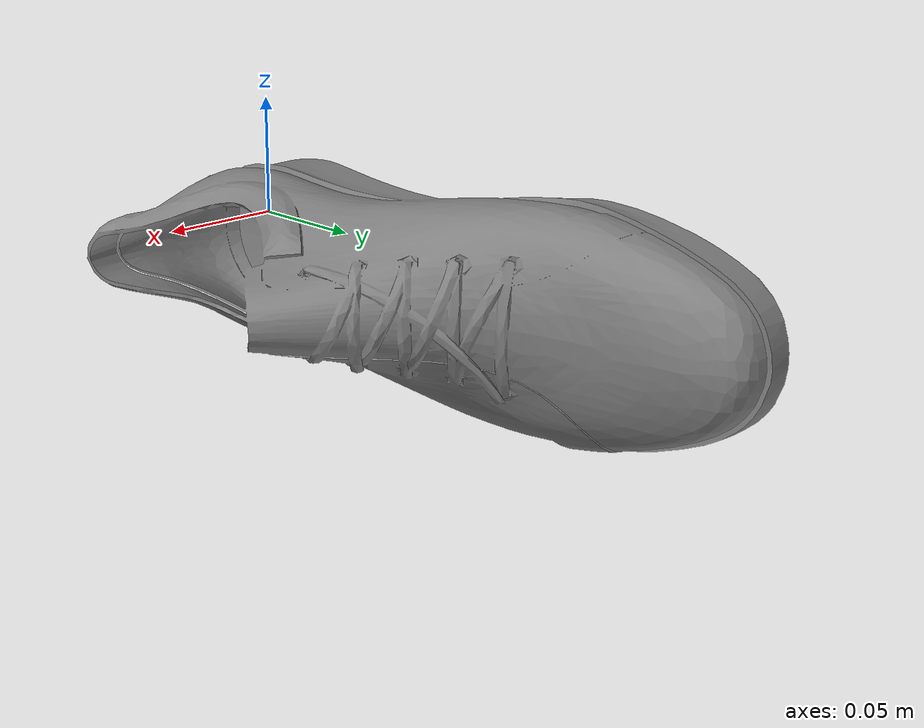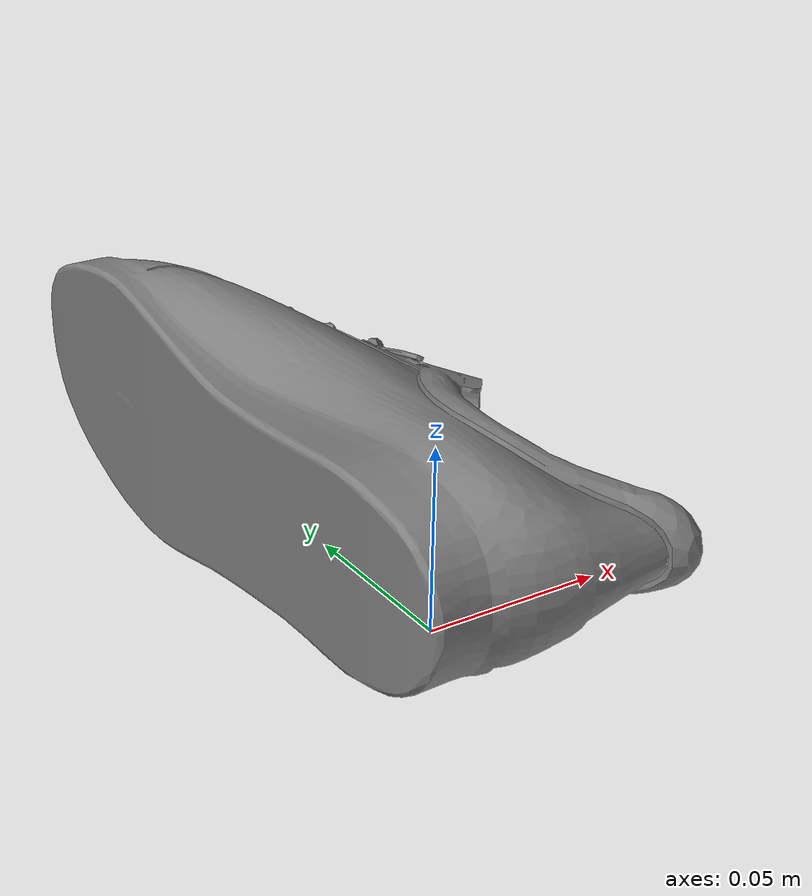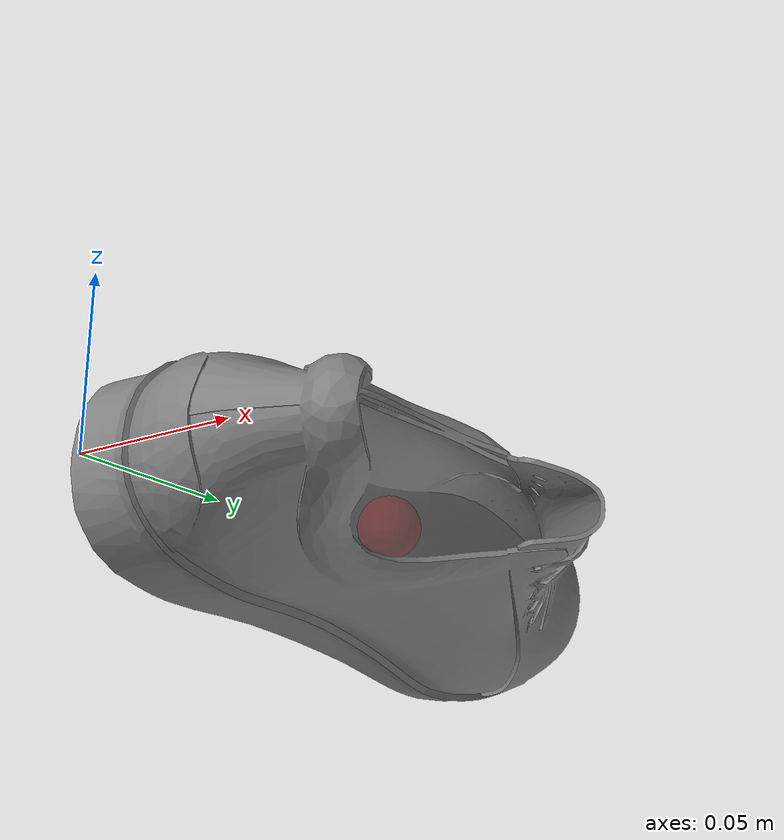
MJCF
<mujoco model="shoe">
    <compiler angle="radian" meshdir="../meshes/" autolimits="true"/>
    <option solver="CG" tolerance="1e-6" impratio="10"/>
    <size nconmax="500" njmax="5000" nstack="5000000"/>

    <asset>
        <mesh name="shoe" file="shoe.stl" scale="0.001 0.001 0.001"/>
    </asset>

    <default>
      <default class="shoe">
        <general biastype="affine"/>
        <default class="shoevisual">
            <geom type="mesh" solimp="0.95 0.99 0.001" solref="0.004 1" priority="1" contype="0" conaffinity="0" group="2"/>
        </default>
        <default class="shoecollision">
            <geom type="mesh" group="3"/>
        </default>
      </default>

    </default>

    <worldbody>
    <site name="shoe_pos_world" pos="0.025 0.1 0" size="0.01 0.01 0.01" type="sphere" rgba="1 0 0 0.2"/>
        <body name="shoe" pos="0 0 0" quat="0.5 0.5 0.5 0.5">
            <inertial pos="0.1 0 0.02" quat="1 0 0 0" mass="20" diaginertia="0.01 0.03 0.03" />
            <geom class="shoevisual" friction="0.7" mesh="shoe" />
            <geom class="shoecollision" pos="0.1 0 0.025" size="0.1 0.04 0.03" type="box"/>
        </body>
    </worldbody>

</mujoco>
